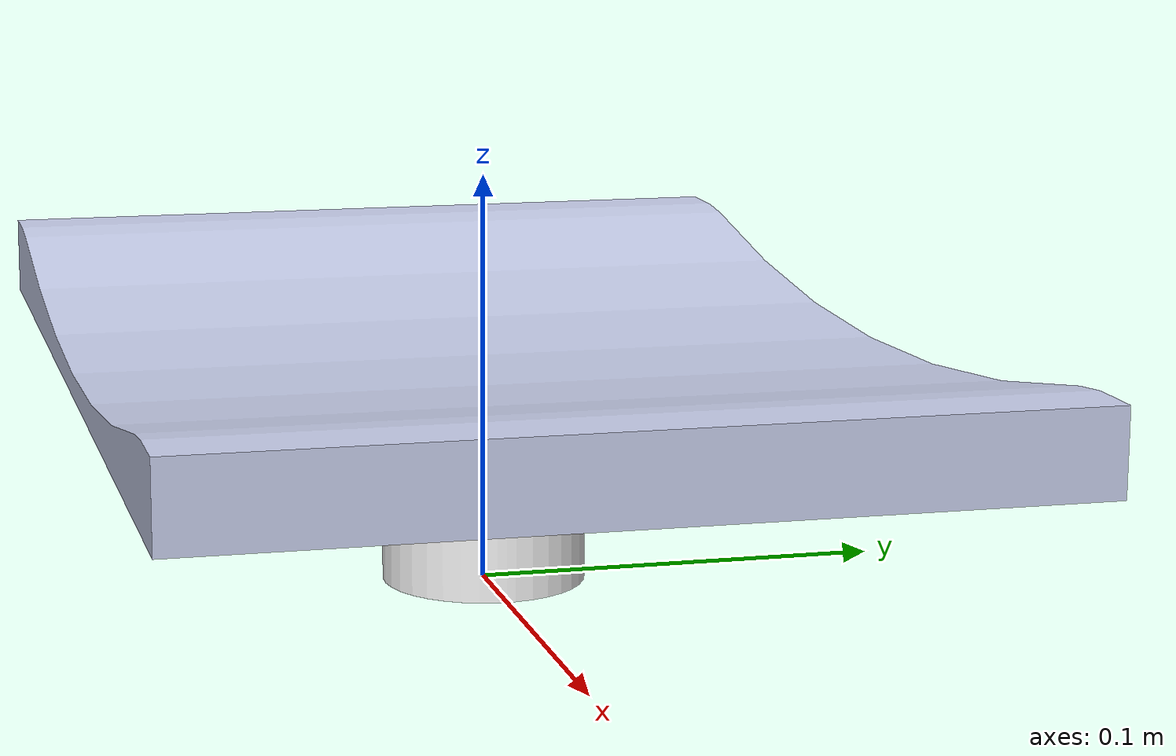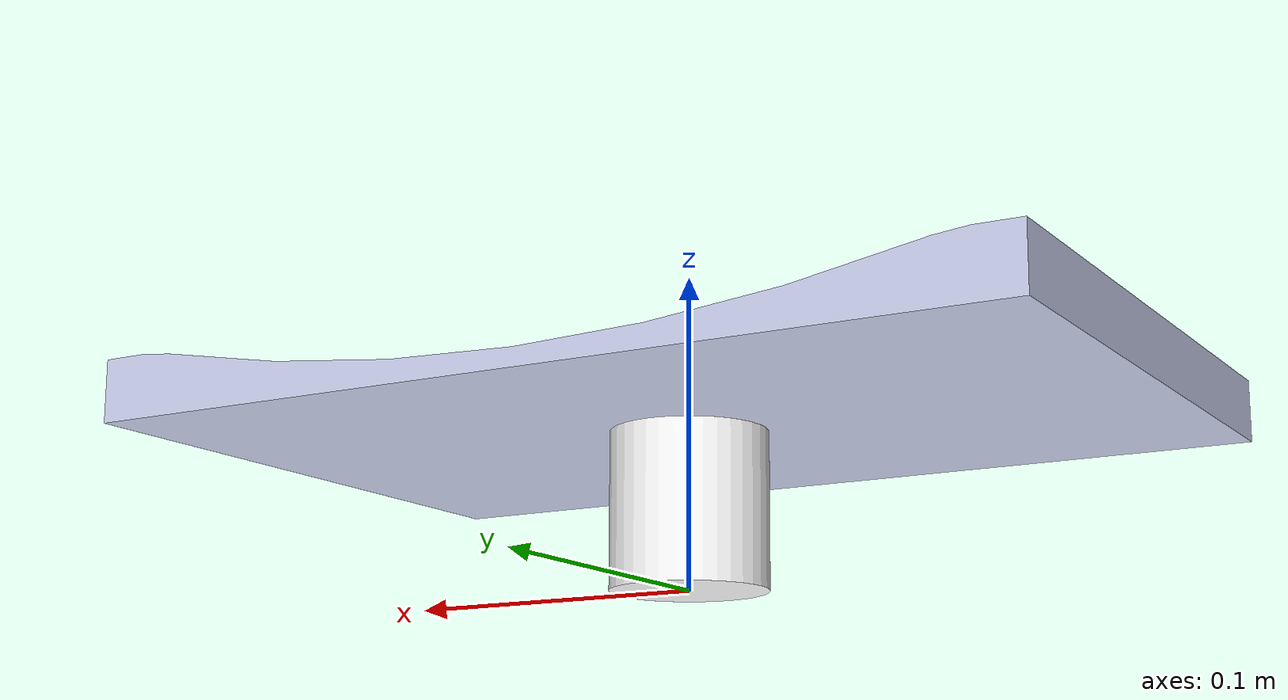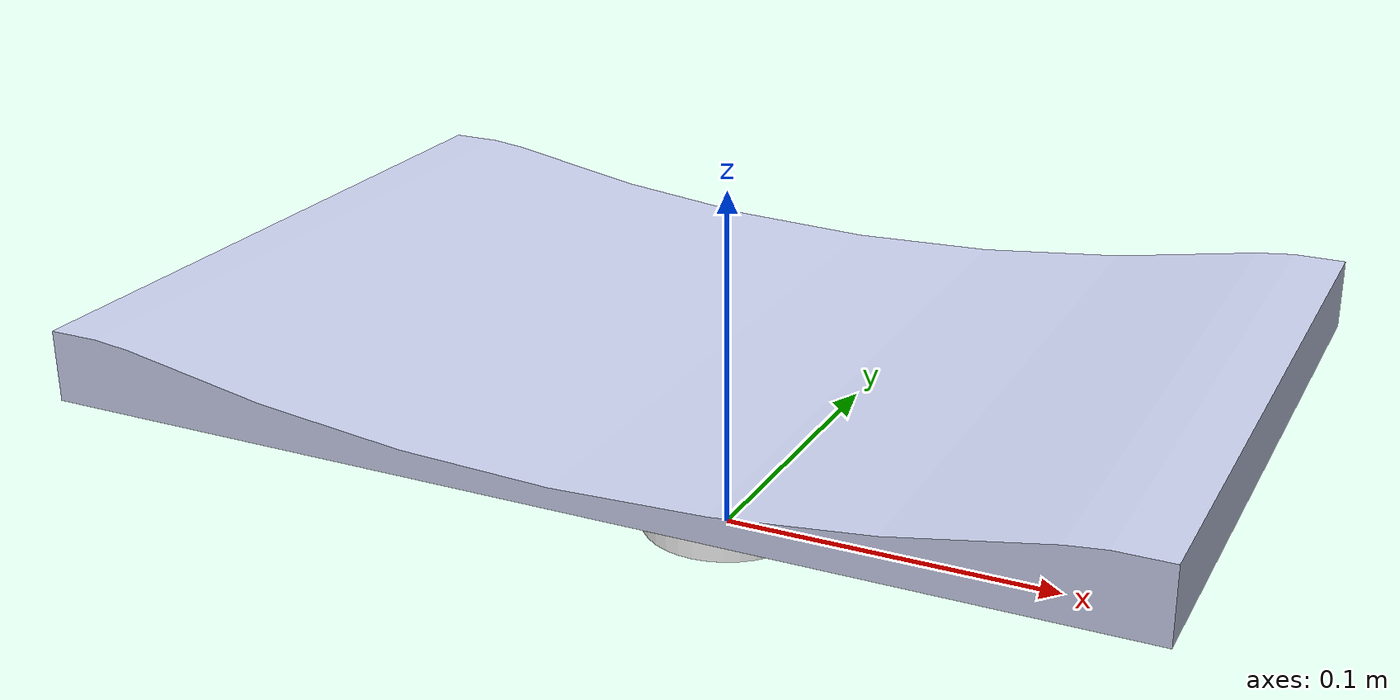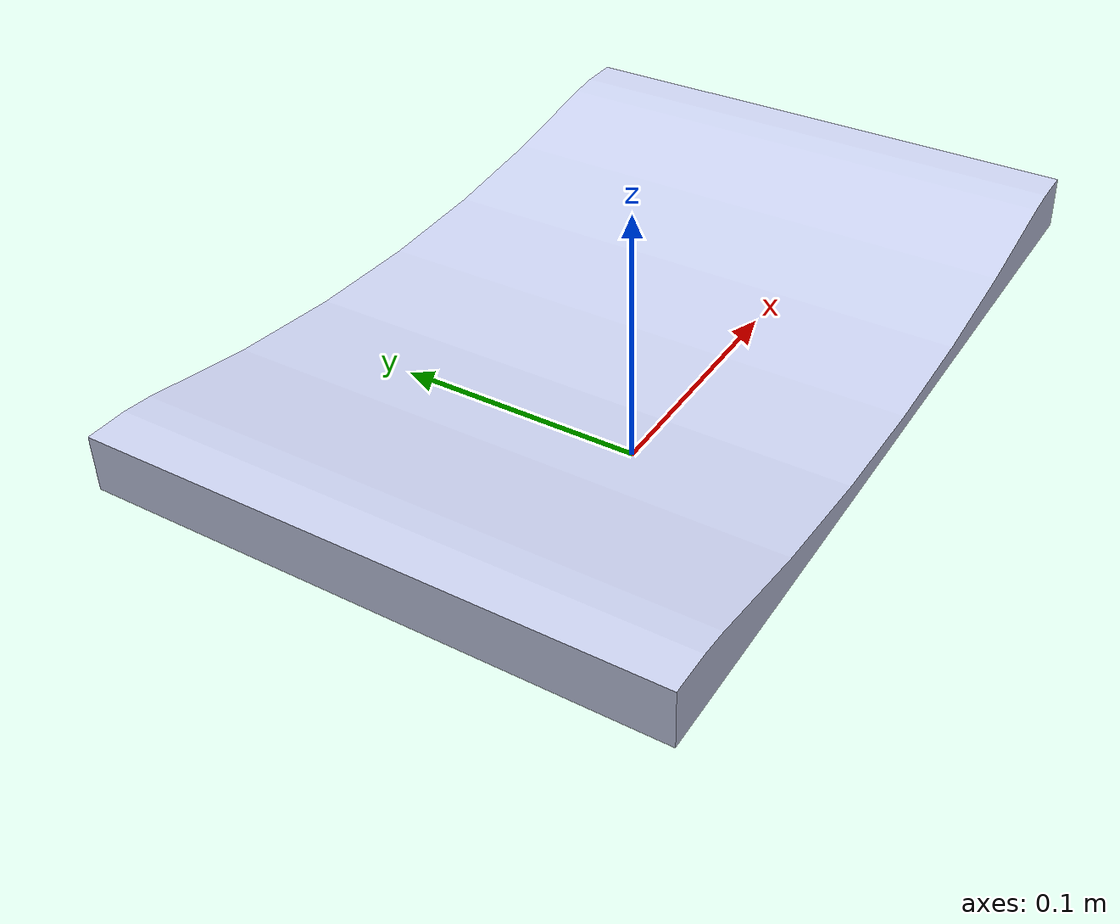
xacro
<?xml version='1.0'?>

<robot name="unknown_surface" xmlns:xacro="http://www.ros.org/wiki/xacro">

  <xacro:include filename="$(find unknown_surface)/robots/arm.gazebo" />

  <link name="world"/>
  <joint name="fixed" type="fixed">
    <parent link="world"/>
    <child link="base_link"/>
  </joint>
  <link
    name="base_link">
    <inertial>
      <origin
        xyz="-4.8727E-19 0 0.025"
        rpy="0 0 0" />
      <mass
        value="0.098175" />
      <inertia
        ixx="3.5793E-05"
        ixy="0"
        ixz="-2.8685E-37"
        iyy="3.5793E-05"
        iyz="-1.1857E-37"
        izz="3.068E-05" />
    </inertial>
    <visual>
      <origin
        xyz="0 0 0"
        rpy="0 0 0" />
      <geometry>
        <mesh
          filename="package://unknown_surface/meshes/base_link.STL" />
      </geometry>
      <material
        name="">
        <color
          rgba="1 1 1 1" />
      </material>
    </visual>
    <collision>
      <origin
        xyz="0 0 0"
        rpy="0 0 0" />
      <geometry>
        <mesh
          filename="package://unknown_surface/meshes/base_link.STL" />
      </geometry>
    </collision>
  </link>
  <link
    name="my_Link">
    <inertial>
      <origin
        xyz="-5.847E-17 3.8124E-17 0.0069755"
        rpy="0 0 0" />
      <mass
        value="0.70432" />
      <inertia
        ixx="0.007332"
        ixy="1.4008E-18"
        ixz="7.9025E-19"
        iyy="0.0023652"
        iyz="9.4998E-18"
        izz="0.0096623" />
    </inertial>
    <visual>
      <origin
        xyz="0 0 0"
        rpy="0 0 0" />
      <geometry>
        <mesh
          filename="package://unknown_surface/meshes/my_Link.STL" />
      </geometry>
      <material
        name="">
        <color
          rgba="0.79216 0.81961 0.93333 1" />
      </material>
    </visual>
    <collision>
      <origin
        xyz="0 0 0"
        rpy="0 0 0" />
      <geometry>
        <mesh
          filename="package://unknown_surface/meshes/my_Link.STL" />
      </geometry>
    </collision>
  </link>
  <joint
    name="my_joint"
    type="fixed">
    <origin
      xyz="0 0 0.05"
      rpy="0 0 1.5708" />
    <parent
      link="base_link" />
    <child
      link="my_Link" />
    <axis
      xyz="0 0 0" />
  </joint>
</robot>
